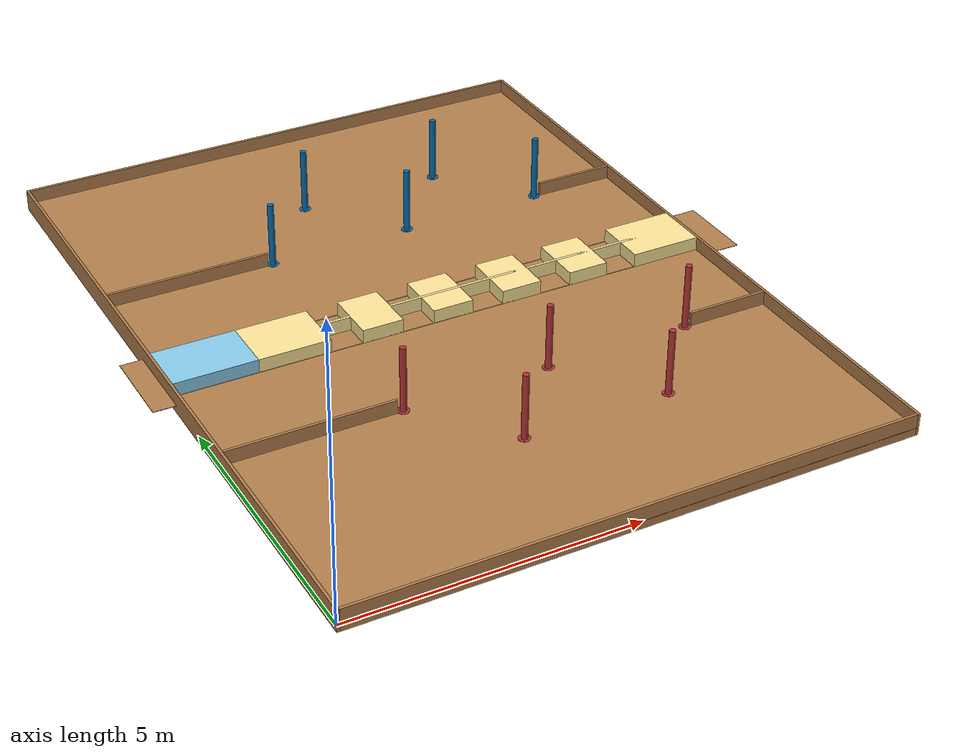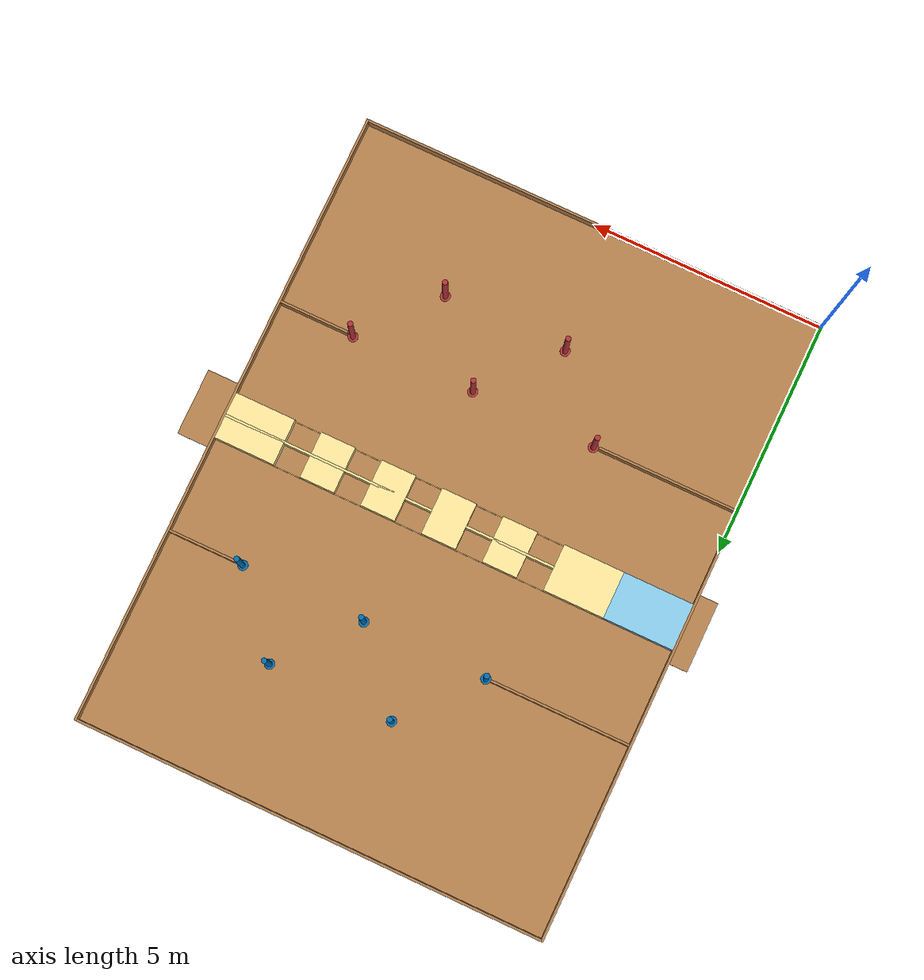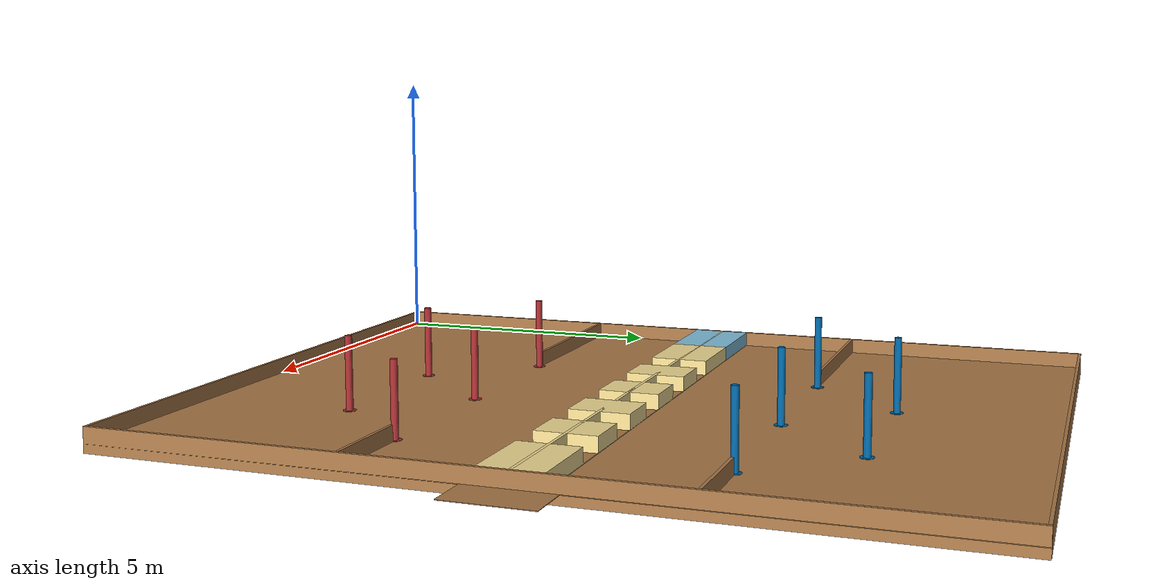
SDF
<?xml version='1.0'?>
<sdf version='1.6'>
	<model name='NHK2020'>
		<static>true</static>
		<pose>0 0 0 0 0 0</pose>
		<link name="base_link" />

		<link name="floor_main_link">
			<collision name="floor_main_collision">
				<pose>5.050 6.7 0.005 0 0 0</pose>
				<geometry>
					<box>
						<size>10.10 13.40 0.01</size>
					</box>
				</geometry>
			</collision>
			<visual name="floor_main_visual">
				<pose>5.050 6.7 0.005 0 0 0</pose>
				<geometry>
					<box>
						<size>10.10 13.40 0.01</size>
					</box>
				</geometry>
				<material>
					<script>
						<uri>file://media/materials/scripts/gazebo.material</uri>
						<name>Gazebo/Wood</name>
					</script>
					<ambient>1 1 1 1</ambient>
				</material>
				<meta>
					<layer>0</layer>
				</meta>
			</visual>
		</link>
		<link name="floor_goal_link">
			<collision name="floor_goal_collision">
				<pose>10.450 6.7 0.005 0 0 0</pose>
				<geometry>
					<box>
						<size>0.7 1.42 0.01</size>
					</box>
				</geometry>
			</collision>
			<visual name="floor_goal_visual">
				<pose>10.450 6.7 0.005 0 0 0</pose>
				<geometry>
					<box>
						<size>0.7 1.42 0.01</size>
					</box>
				</geometry>
				<material>
					<script>
						<uri>file://media/materials/scripts/gazebo.material</uri>
						<name>Gazebo/Wood</name>
					</script>
					<ambient>1 1 1 1</ambient>
				</material>
				<meta>
					<layer>0</layer>
				</meta>
			</visual>
		</link>
		<link name="floor_kickballrack_link">
			<collision name="floor_kickballrack_collision">
				<pose>-0.2 6.7 0.005 0 0 0</pose>
				<geometry>
					<box>
						<size>0.4 1.5 0.01</size>
					</box>
				</geometry>
			</collision>
			<visual name="floor_goal_visual">
				<pose>-0.2 6.7 0.005 0 0 0</pose>
				<geometry>
					<box>
						<size>0.4 1.5 0.01</size>
					</box>
				</geometry>
				<material>
					<script>
						<uri>file://media/materials/scripts/gazebo.material</uri>
						<name>Gazebo/Wood</name>
					</script>
					<ambient>1 1 1 1</ambient>
				</material>
				<meta>
					<layer>0</layer>
				</meta>
			</visual>
		</link>
		<link name="wall_blue_link">
			<collision name="wall_blue_collision">
				<pose>5.050 0.025 0.06 0 0 0</pose>
				<geometry>
					<box>
						<size>10 0.05 0.4</size>
					</box>
				</geometry>
			</collision>
			<visual name="wall_blue_visual">
				<pose>5.050 0.025 0.06 0 0 0</pose>
				<geometry>
					<box>
						<size>10 0.05 0.4</size>
					</box>
				</geometry>
				<material>
					<script>
						<uri>file://media/materials/scripts/gazebo.material</uri>
						<name>Gazebo/Wood</name>
					</script>
					<ambient>1 1 1 1</ambient>
				</material>
				<meta>
					<layer>0</layer>
				</meta>
			</visual>
		</link>
		<link name="wall_red_link">
			<collision name="wall_red_collision">
				<pose>5.050 13.375 0.06 0 0 0</pose>
				<geometry>
					<box>
						<size>10 0.05 0.4</size>
					</box>
				</geometry>
			</collision>
			<visual name="wall_red_visual">
				<pose>5.050 13.375 0.06 0 0 0</pose>
				<geometry>
					<box>
						<size>10 0.05 0.4</size>
					</box>
				</geometry>
				<material>
					<script>
						<uri>file://media/materials/scripts/gazebo.material</uri>
						<name>Gazebo/Wood</name>
					</script>
					<ambient>1 1 1 1</ambient>
				</material>
				<meta>
					<layer>0</layer>
				</meta>
			</visual>
		</link>
		<link name="wall_goal_link">
			<collision name="wall_goal_collision">
				<pose>10.075 6.7 0.06 0 0 0</pose>
				<geometry>
					<box>
						<size>0.05 13.400 0.4</size>
					</box>
				</geometry>
			</collision>
			<visual name="wall_goal_visual">
				<pose>10.075 6.7 0.06 0 0 0</pose>
				<geometry>
					<box>
						<size>0.05 13.400 0.4</size>
					</box>
				</geometry>
				<material>
					<script>
						<uri>file://media/materials/scripts/gazebo.material</uri>
						<name>Gazebo/Wood</name>
					</script>
					<ambient>1 1 1 1</ambient>
				</material>
				<meta>
					<layer>0</layer>
				</meta>
			</visual>
		</link>
		<link name="wall_rack_link">
			<collision name="wall_rack_collision">
				<pose>0.025 6.7 0.06 0 0 0</pose>
				<geometry>
					<box>
						<size>0.05 13.400 0.4</size>
					</box>
				</geometry>
			</collision>
			<visual name="wall_goal_visual">
				<pose>0.025 6.7 0.06 0 0 0</pose>
				<geometry>
					<box>
						<size>0.05 13.400 0.4</size>
					</box>
				</geometry>
				<material>
					<script>
						<uri>file://media/materials/scripts/gazebo.material</uri>
						<name>Gazebo/Wood</name>
					</script>
					<ambient>1 1 1 1</ambient>
				</material>
				<meta>
					<layer>0</layer>
				</meta>
			</visual>
		</link>
		<link name="wall_prsz_blue_link">
			<collision name="wall_prsz_blue_collision">
				<pose>1.5415 4.15 0.06 0 0 0</pose>
				<geometry>
					<box>
						<size>2.983 0.05 0.4</size>
					</box>
				</geometry>
			</collision>
			<visual name="wall_prsz_blue_visual">
				<pose>1.5415 4.15 0.06 0 0 0</pose>
				<geometry>
					<box>
						<size>2.983 0.05 0.4</size>
					</box>
				</geometry>
				<material>
					<script>
						<uri>file://media/materials/scripts/gazebo.material</uri>
						<name>Gazebo/Wood</name>
					</script>
					<ambient>1 1 1 1</ambient>
				</material>
				<meta>
					<layer>0</layer>
				</meta>
			</visual>
		</link>
		<link name="wall_prsz_red_link">
			<collision name="wall_prsz_red_collision">
				<pose>1.5415 9.250 0.06 0 0 0</pose>
				<geometry>
					<box>
						<size>2.983 0.05 0.4</size>
					</box>
				</geometry>
			</collision>
			<visual name="wall_prsz_red_visual">
				<pose>1.5415 9.250 0.06 0 0 0</pose>
				<geometry>
					<box>
						<size>2.983 0.05 0.4</size>
					</box>
				</geometry>
				<material>
					<script>
						<uri>file://media/materials/scripts/gazebo.material</uri>
						<name>Gazebo/Wood</name>
					</script>
					<ambient>1 1 1 1</ambient>
				</material>
				<meta>
					<layer>0</layer>
				</meta>
			</visual>
		</link>
		<link name="wall_trsz_blue_link">
			<collision name="wall_trsz_blue_collision">
				<pose>9.3085 4.15 0.06 0 0 0</pose>
				<geometry>
					<box>
						<size>1.483 0.05 0.4</size>
					</box>
				</geometry>
			</collision>
			<visual name="wall_trsz_blue_visual">
				<pose>9.3085 4.15 0.06 0 0 0</pose>
				<geometry>
					<box>
						<size>1.483 0.05 0.4</size>
					</box>
				</geometry>
				<material>
					<script>
						<uri>file://media/materials/scripts/gazebo.material</uri>
						<name>Gazebo/Wood</name>
					</script>
					<ambient>1 1 1 1</ambient>
				</material>
				<meta>
					<layer>0</layer>
				</meta>
			</visual>
		</link>
		<link name="wall_trsz_red_link">
			<collision name="wall_trsz_red_collision">
				<pose>9.3085 9.250 0.06 0 0 0</pose>
				<geometry>
					<box>
						<size>1.483 0.05 0.4</size>
					</box>
				</geometry>
			</collision>
			<visual name="wall_prsz_blue_visual">
				<pose>9.3085 9.250 0.06 0 0 0</pose>
				<geometry>
					<box>
						<size>1.483 0.05 0.4</size>
					</box>
				</geometry>
				<material>
					<script>
						<uri>file://media/materials/scripts/gazebo.material</uri>
						<name>Gazebo/Wood</name>
					</script>
					<ambient>1 1 1 1</ambient>
				</material>
				<meta>
					<layer>0</layer>
				</meta>
			</visual>
		</link>
		<link name="obj_tbrack_link">
			<collision name="obj_tbrack_collision">
				<pose>0.8 6.7 0.06 0 0 0</pose>
				<geometry>
					<box>
						<size>1.5 1.0 0.4</size>
					</box>
				</geometry>
			</collision>
			<visual name="obj_tbrack_visual">
				<pose>0.8 6.7 0.06 0 0 0</pose>
				<geometry>
					<box>
						<size>1.5 1.0 0.4</size>
					</box>
				</geometry>
				<material>
					<diffuse>0.5333 0.7922 0.9137 1</diffuse>
					<ambient>1 1 1 1</ambient>
				</material>
				<meta>
					<layer>0</layer>
				</meta>
			</visual>
		</link>
		<!-- count from rack -->
		<link name="obj_trspots0_link">
			<collision name="obj_trspots0_collision">
				<pose>2.2 6.7 0.06 0 0 0</pose>
				<geometry>
					<box>
						<size>1.3 1.0 0.4</size>
					</box>
				</geometry>
			</collision>
			<visual name="obj_trspots0_visual">
				<pose>2.2 6.7 0.06 0 0 0</pose>
				<geometry>
					<box>
						<size>1.3 1.0 0.4</size>
					</box>
				</geometry>
				<material>
					<diffuse>0.9922 0.8980 0.6 1</diffuse>
					<ambient>1 1 1 1</ambient>
				</material>
				<meta>
					<layer>0</layer>
				</meta>
			</visual>
		</link>
		<link name="obj_trspots1_link">
			<collision name="obj_trspots1_collision">
				<pose>3.805 6.7 0.06 0 0 0</pose>
				<geometry>
					<box>
						<size>0.75 1.0 0.4</size>
					</box>
				</geometry>
			</collision>
			<visual name="obj_trspots1_visual">
				<pose>3.805 6.7 0.06 0 0 0</pose>
				<geometry>
					<box>
						<size>0.75 1.0 0.4</size>
					</box>
				</geometry>
				<material>
					<diffuse>0.9922 0.8980 0.6 1</diffuse>
					<ambient>1 1 1 1</ambient>
				</material>
				<meta>
					<layer>0</layer>
				</meta>
			</visual>
		</link>
		<link name="obj_trspots2_link">
			<collision name="obj_trspots2_collision">
				<pose>5.135 6.7 0.06 0 0 0</pose>
				<geometry>
					<box>
						<size>0.75 1.0 0.4</size>
					</box>
				</geometry>
			</collision>
			<visual name="obj_trspots2_visual">
				<pose>5.135 6.7 0.06 0 0 0</pose>
				<geometry>
					<box>
						<size>0.75 1.0 0.4</size>
					</box>
				</geometry>
				<material>
					<diffuse>0.9922 0.8980 0.6 1</diffuse>
					<ambient>1 1 1 1</ambient>
				</material>
				<meta>
					<layer>0</layer>
				</meta>
			</visual>
		</link>
		<link name="obj_trspots3_link">
			<collision name="obj_trspots3_collision">
				<pose>6.465 6.7 0.06 0 0 0</pose>
				<geometry>
					<box>
						<size>0.75 1.0 0.4</size>
					</box>
				</geometry>
			</collision>
			<visual name="obj_trspots3_visual">
				<pose>6.465 6.7 0.06 0 0 0</pose>
				<geometry>
					<box>
						<size>0.75 1.0 0.4</size>
					</box>
				</geometry>
				<material>
					<diffuse>0.9922 0.8980 0.6 1</diffuse>
					<ambient>1 1 1 1</ambient>
				</material>
				<meta>
					<layer>0</layer>
				</meta>
			</visual>
		</link>
		<link name="obj_trspots4_link">
			<collision name="obj_trspots4_collision">
				<pose>7.795 6.7 0.06 0 0 0</pose>
				<geometry>
					<box>
						<size>0.75 1.0 0.4</size>
					</box>
				</geometry>
			</collision>
			<visual name="obj_trspots4_visual">
				<pose>7.795 6.7 0.06 0 0 0</pose>
				<geometry>
					<box>
						<size>0.75 1.0 0.4</size>
					</box>
				</geometry>
				<material>
					<diffuse>0.9922 0.8980 0.6 1</diffuse>
					<ambient>1 1 1 1</ambient>
				</material>
				<meta>
					<layer>0</layer>
				</meta>
			</visual>
		</link>
		<link name="obj_trspots5_link">
			<collision name="obj_trspots5_collision">
				<pose>9.4 6.7 0.06 0 0 0</pose>
				<geometry>
					<box>
						<size>1.3 1.0 0.4</size>
					</box>
				</geometry>
			</collision>
			<visual name="obj_trspots4_visual">
				<pose>9.4 6.7 0.06 0 0 0</pose>
				<geometry>
					<box>
						<size>1.3 1.0 0.4</size>
					</box>
				</geometry>
				<material>
					<diffuse>0.9922 0.8980 0.6 1</diffuse>
					<ambient>1 1 1 1</ambient>
				</material>
				<meta>
					<layer>0</layer>
				</meta>
			</visual>
		</link>
		<link name="obj_bar_link">
			<collision name="obj_bar_collision">
				<pose>5.050 6.7 0.06 0 0 0</pose>
				<geometry>
					<box>
						<size>10 0.05 0.4</size>
					</box>
				</geometry>
			</collision>
			<visual name="obj_bar_visual">
				<pose>5.050 6.7 0.06 0 0 0</pose>
				<geometry>
					<box>
						<size>10 0.05 0.4</size>
					</box>
				</geometry>
				<material>
					<diffuse>0.9922 0.8980 0.6 1</diffuse>
					<ambient>1 1 1 1</ambient>
				</material>
				<meta>
					<layer>0</layer>
				</meta>
			</visual>
		</link>
		<link name="obj_steeltube_blue_link">
			<collision name="obj_steeltube_blue_collision">
				<pose>5.050 6.205 0.015 0 0 0</pose>
				<geometry>
					<box>
						<size>10 0.01 0.01</size>
					</box>
				</geometry>
			</collision>
			<visual name="obj_steeltube_blue_visual">
				<pose>5.050 6.205 0.015 0 0 0</pose>
				<geometry>
					<box>
						<size>10 0.01 0.01</size>
					</box>
				</geometry>
				<material>
					<diffuse>0.9922 0.8980 0.6 1</diffuse>
					<ambient>1 1 1 1</ambient>
				</material>
				<meta>
					<layer>0</layer>
				</meta>
			</visual>
		</link>
		<link name="obj_steeltube_red_link">
			<collision name="obj_steeltube_red_collision">
				<pose>5.050 7.195 0.015 0 0 0</pose>
				<geometry>
					<box>
						<size>10 0.01 0.01</size>
					</box>
				</geometry>
			</collision>
			<visual name="obj_steeltube_red_visual">
				<pose>5.050 7.195 0.015 0 0 0</pose>
				<geometry>
					<box>
						<size>10 0.01 0.01</size>
					</box>
				</geometry>
				<material>
					<diffuse>0.9922 0.8980 0.6 1</diffuse>
					<ambient>1 1 1 1</ambient>
				</material>
				<meta>
					<layer>0</layer>
				</meta>
			</visual>
		</link>
		<!-- count from rack side -->
		<!-- if you want to rotate poll, you should change wing yaw -->
		<link name="obj_obstacle_blue0_link">
			<collision name="obj_obstacle_blue0_bottom_collision">
				<pose>3.140 4.15 0.013 0 0 0</pose>
				<geometry>
					<cylinder>
						<radius>0.107</radius>
						<length>0.006</length>
					</cylinder>
				</geometry>
			</collision>
			<visual name="obj_obstacle_blue0_bottom_visual">
				<pose>3.140 4.15 0.013 0 0 0</pose>
				<geometry>
					<cylinder>
						<radius>0.107</radius>
						<length>0.006</length>
					</cylinder>
				</geometry>
				<material>
					<diffuse>0.6902 0.1922 0.2078 1</diffuse>
					<ambient>1 1 1 1</ambient>
				</material>
				<meta>
					<layer>0</layer>
				</meta>
			</visual>
			<collision name="obj_obstacle_blue0_poll_collision">
				<pose>3.140 4.15 0.61 0 0 0</pose>
				<geometry>
					<cylinder>
						<radius>0.057</radius>
						<length>1.2</length>
					</cylinder>
				</geometry>
			</collision>
			<visual name="obj_obstacle_blue0_poll_visual">
				<pose>3.140 4.15 0.61 0 0 0</pose>
				<geometry>
					<cylinder>
						<radius>0.057</radius>
						<length>1.2</length>
					</cylinder>
				</geometry>
				<material>
					<diffuse>0.6902 0.1922 0.2078 1</diffuse>
					<ambient>1 1 1 1</ambient>
				</material>
				<meta>
					<layer>0</layer>
				</meta>
			</visual>
		</link>
		<link name="obj_obstacle_blue1_link">
			<collision name="obj_obstacle_blue1_bottom_collision">
				<pose>4.470 2.610 0.013 0 0 0</pose>
				<geometry>
					<cylinder>
						<radius>0.107</radius>
						<length>0.006</length>
					</cylinder>
				</geometry>
			</collision>
			<visual name="obj_obstacle_blue1_bottom_visual">
				<pose>4.470 2.610 0.013 0 0 0</pose>
				<geometry>
					<cylinder>
						<radius>0.107</radius>
						<length>0.006</length>
					</cylinder>
				</geometry>
				<material>
					<diffuse>0.6902 0.1922 0.2078 1</diffuse>
					<ambient>1 1 1 1</ambient>
				</material>
				<meta>
					<layer>0</layer>
				</meta>
			</visual>
			<collision name="obj_obstacle_blue1_poll_collision">
				<pose>4.470 2.610 0.61 0 0 0</pose>
				<geometry>
					<cylinder>
						<radius>0.057</radius>
						<length>1.2</length>
					</cylinder>
				</geometry>
			</collision>
			<visual name="obj_obstacle_blue1_poll_visual">
				<pose>4.470 2.610 0.61 0 0 0</pose>
				<geometry>
					<cylinder>
						<radius>0.057</radius>
						<length>1.2</length>
					</cylinder>
				</geometry>
				<material>
					<diffuse>0.6902 0.1922 0.2078 1</diffuse>
					<ambient>1 1 1 1</ambient>
				</material>
				<meta>
					<layer>0</layer>
				</meta>
			</visual>
		</link>
		<link name="obj_obstacle_blue2_link">
			<collision name="obj_obstacle_blue2_bottom_collision">
				<pose>5.80 4.15 0.013 0 0 0</pose>
				<geometry>
					<cylinder>
						<radius>0.107</radius>
						<length>0.006</length>
					</cylinder>
				</geometry>
			</collision>
			<visual name="obj_obstacle_blue2_bottom_visual">
				<pose>5.80 4.15 0.013 0 0 0</pose>
				<geometry>
					<cylinder>
						<radius>0.107</radius>
						<length>0.006</length>
					</cylinder>
				</geometry>
				<material>
					<diffuse>0.6902 0.1922 0.2078 1</diffuse>
					<ambient>1 1 1 1</ambient>
				</material>
				<meta>
					<layer>0</layer>
				</meta>
			</visual>
			<collision name="obj_obstacle_blue2_poll_collision">
				<pose>5.80 4.15 0.61 0 0 0</pose>
				<geometry>
					<cylinder>
						<radius>0.057</radius>
						<length>1.2</length>
					</cylinder>
				</geometry>
			</collision>
			<visual name="obj_obstacle_blue2_poll_visual">
				<pose>5.80 4.15 0.61 0 0 0</pose>
				<geometry>
					<cylinder>
						<radius>0.057</radius>
						<length>1.2</length>
					</cylinder>
				</geometry>
				<material>
					<diffuse>0.6902 0.1922 0.2078 1</diffuse>
					<ambient>1 1 1 1</ambient>
				</material>
				<meta>
					<layer>0</layer>
				</meta>
			</visual>
		</link>
		<link name="obj_obstacle_blue3_link">
			<collision name="obj_obstacle_blue3_bottom_collision">
				<pose>7.130 2.610 0.013 0 0 0</pose>
				<geometry>
					<cylinder>
						<radius>0.107</radius>
						<length>0.006</length>
					</cylinder>
				</geometry>
			</collision>
			<visual name="obj_obstacle_blue3_bottom_visual">
				<pose>7.130 2.610 0.013 0 0 0</pose>
				<geometry>
					<cylinder>
						<radius>0.107</radius>
						<length>0.006</length>
					</cylinder>
				</geometry>
				<material>
					<diffuse>0.6902 0.1922 0.2078 1</diffuse>
					<ambient>1 1 1 1</ambient>
				</material>
				<meta>
					<layer>0</layer>
				</meta>
			</visual>
			<collision name="obj_obstacle_blue3_poll_collision">
				<pose>7.130 2.610 0.61 0 0 0</pose>
				<geometry>
					<cylinder>
						<radius>0.057</radius>
						<length>1.2</length>
					</cylinder>
				</geometry>
			</collision>
			<visual name="obj_obstacle_blue3_poll_visual">
				<pose>7.130 2.610 0.61 0 0 0</pose>
				<geometry>
					<cylinder>
						<radius>0.057</radius>
						<length>1.2</length>
					</cylinder>
				</geometry>
				<material>
					<diffuse>0.6902 0.1922 0.2078 1</diffuse>
					<ambient>1 1 1 1</ambient>
				</material>
				<meta>
					<layer>0</layer>
				</meta>
			</visual>
		</link>
		<link name="obj_obstacle_blue4_link">
			<collision name="obj_obstacle_blue4_bottom_collision">
				<pose>8.460 4.15 0.013 0 0 0</pose>
				<geometry>
					<cylinder>
						<radius>0.107</radius>
						<length>0.006</length>
					</cylinder>
				</geometry>
			</collision>
			<visual name="obj_obstacle_blue4_bottom_visual">
				<pose>8.460 4.15 0.013 0 0 0</pose>
				<geometry>
					<cylinder>
						<radius>0.107</radius>
						<length>0.006</length>
					</cylinder>
				</geometry>
				<material>
					<diffuse>0.6902 0.1922 0.2078 1</diffuse>
					<ambient>1 1 1 1</ambient>
				</material>
				<meta>
					<layer>0</layer>
				</meta>
			</visual>
			<collision name="obj_obstacle_blue4_poll_collision">
				<pose>8.460 4.15 0.61 0 0 0</pose>
				<geometry>
					<cylinder>
						<radius>0.057</radius>
						<length>1.2</length>
					</cylinder>
				</geometry>
			</collision>
			<visual name="obj_obstacle_blue4_poll_visual">
				<pose>8.460 4.15 0.61 0 0 0</pose>
				<geometry>
					<cylinder>
						<radius>0.057</radius>
						<length>1.2</length>
					</cylinder>
				</geometry>
				<material>
					<diffuse>0.6902 0.1922 0.2078 1</diffuse>
					<ambient>1 1 1 1</ambient>
				</material>
				<meta>
					<layer>0</layer>
				</meta>
			</visual>
		</link>
		<link name="obj_obstacle_red0_link">
			<collision name="obj_obstacle_red0_bottom_collision">
				<pose>3.140 9.25 0.013 0 0 0</pose>
				<geometry>
					<cylinder>
						<radius>0.107</radius>
						<length>0.006</length>
					</cylinder>
				</geometry>
			</collision>
			<visual name="obj_obstacle_red0_bottom_visual">
				<pose>3.140 9.25 0.013 0 0 0</pose>
				<geometry>
					<cylinder>
						<radius>0.107</radius>
						<length>0.006</length>
					</cylinder>
				</geometry>
				<material>
					<diffuse>0 0.4196 0.67450 1</diffuse>
					<ambient>1 1 1 1</ambient>
				</material>
				<meta>
					<layer>0</layer>
				</meta>
			</visual>
			<collision name="obj_obstacle_red0_poll_collision">
				<pose>3.140 9.250 0.61 0 0 0</pose>
				<geometry>
					<cylinder>
						<radius>0.057</radius>
						<length>1.2</length>
					</cylinder>
				</geometry>
			</collision>
			<visual name="obj_obstacle_red0_poll_visual">
				<pose>3.140 9.250 0.61 0 0 0</pose>
				<geometry>
					<cylinder>
						<radius>0.057</radius>
						<length>1.2</length>
					</cylinder>
				</geometry>
				<material>
					<diffuse>0 0.4196 0.67450 1</diffuse>
					<ambient>1 1 1 1</ambient>
				</material>
				<meta>
					<layer>0</layer>
				</meta>
			</visual>
		</link>
		<link name="obj_obstacle_red1_link">
			<collision name="obj_obstacle_red1_bottom_collision">
				<pose>4.470 10.790 0.013 0 0 0</pose>
				<geometry>
					<cylinder>
						<radius>0.107</radius>
						<length>0.006</length>
					</cylinder>
				</geometry>
			</collision>
			<visual name="obj_obstacle_red1_bottom_visual">
				<pose>4.470 10.790 0.013 0 0 0</pose>
				<geometry>
					<cylinder>
						<radius>0.107</radius>
						<length>0.006</length>
					</cylinder>
				</geometry>
				<material>
					<diffuse>0 0.4196 0.67450 1</diffuse>
					<ambient>1 1 1 1</ambient>
				</material>
				<meta>
					<layer>0</layer>
				</meta>
			</visual>
			<collision name="obj_obstacle_red1_poll_collision">
				<pose>4.470 10.790 0.61 0 0 0</pose>
				<geometry>
					<cylinder>
						<radius>0.057</radius>
						<length>1.2</length>
					</cylinder>
				</geometry>
			</collision>
			<visual name="obj_obstacle_red1_poll_visual">
				<pose>4.470 10.790 0.61 0 0 0</pose>
				<geometry>
					<cylinder>
						<radius>0.057</radius>
						<length>1.2</length>
					</cylinder>
				</geometry>
				<material>
					<diffuse>0 0.4196 0.67450 1</diffuse>
					<ambient>1 1 1 1</ambient>
				</material>
				<meta>
					<layer>0</layer>
				</meta>
			</visual>
		</link>
		<link name="obj_obstacle_red2_link">
			<collision name="obj_obstacle_red2_bottom_collision">
				<pose>5.80 9.250 0.013 0 0 0</pose>
				<geometry>
					<cylinder>
						<radius>0.107</radius>
						<length>0.006</length>
					</cylinder>
				</geometry>
			</collision>
			<visual name="obj_obstacle_red2_bottom_visual">
				<pose>5.80 9.250 0.013 0 0 0</pose>
				<geometry>
					<cylinder>
						<radius>0.107</radius>
						<length>0.006</length>
					</cylinder>
				</geometry>
				<material>
					<diffuse>0 0.4196 0.67450 1</diffuse>
					<ambient>1 1 1 1</ambient>
				</material>
				<meta>
					<layer>0</layer>
				</meta>
			</visual>
			<collision name="obj_obstacle_red2_poll_collision">
				<pose>5.80 9.250 0.61 0 0 0</pose>
				<geometry>
					<cylinder>
						<radius>0.057</radius>
						<length>1.2</length>
					</cylinder>
				</geometry>
			</collision>
			<visual name="obj_obstacle_red2_poll_visual">
				<pose>5.80 9.250 0.61 0 0 0</pose>
				<geometry>
					<cylinder>
						<radius>0.057</radius>
						<length>1.2</length>
					</cylinder>
				</geometry>
				<material>
					<diffuse>0 0.4196 0.67450 1</diffuse>
					<ambient>1 1 1 1</ambient>
				</material>
				<meta>
					<layer>0</layer>
				</meta>
			</visual>
		</link>
		<link name="obj_obstacle_red3_link">
			<collision name="obj_obstacle_red3_bottom_collision">
				<pose>7.130 10.790 0.013 0 0 0</pose>
				<geometry>
					<cylinder>
						<radius>0.107</radius>
						<length>0.006</length>
					</cylinder>
				</geometry>
			</collision>
			<visual name="obj_obstacle_red3_bottom_visual">
				<pose>7.130 10.790 0.013 0 0 0</pose>
				<geometry>
					<cylinder>
						<radius>0.107</radius>
						<length>0.006</length>
					</cylinder>
				</geometry>
				<material>
					<diffuse>0 0.4196 0.67450 1</diffuse>
					<ambient>1 1 1 1</ambient>
				</material>
				<meta>
					<layer>0</layer>
				</meta>
			</visual>
			<collision name="obj_obstacle_red3_poll_collision">
				<pose>7.130 10.790 0.61 0 0 0</pose>
				<geometry>
					<cylinder>
						<radius>0.057</radius>
						<length>1.2</length>
					</cylinder>
				</geometry>
			</collision>
			<visual name="obj_obstacle_red3_poll_visual">
				<pose>7.130 10.790 0.61 0 0 0</pose>
				<geometry>
					<cylinder>
						<radius>0.057</radius>
						<length>1.2</length>
					</cylinder>
				</geometry>
				<material>
					<diffuse>0 0.4196 0.67450 1</diffuse>
					<ambient>1 1 1 1</ambient>
				</material>
				<meta>
					<layer>0</layer>
				</meta>
			</visual>
		</link>
		<link name="obj_obstacle_red4_link">
			<collision name="obj_obstacle_red4_bottom_collision">
				<pose>8.460 9.250 0.013 0 0 0</pose>
				<geometry>
					<cylinder>
						<radius>0.107</radius>
						<length>0.006</length>
					</cylinder>
				</geometry>
			</collision>
			<visual name="obj_obstacle_red4_bottom_visual">
				<pose>8.460 9.250 0.013 0 0 0</pose>
				<geometry>
					<cylinder>
						<radius>0.107</radius>
						<length>0.006</length>
					</cylinder>
				</geometry>
				<material>
					<diffuse>0 0.4196 0.67450 1</diffuse>
					<ambient>1 1 1 1</ambient>
				</material>
				<meta>
					<layer>0</layer>
				</meta>
			</visual>
			<collision name="obj_obstacle_red4_poll_collision">
				<pose>8.460 9.250 0.61 0 0 0</pose>
				<geometry>
					<cylinder>
						<radius>0.057</radius>
						<length>1.2</length>
					</cylinder>
				</geometry>
			</collision>
			<visual name="obj_obstacle_red4_poll_visual">
				<pose>8.460 9.250 0.61 0 0 0</pose>
				<geometry>
					<cylinder>
						<radius>0.057</radius>
						<length>1.2</length>
					</cylinder>
				</geometry>
				<material>
					<diffuse>0 0.4196 0.67450 1</diffuse>
					<ambient>1 1 1 1</ambient>
				</material>
				<meta>
					<layer>0</layer>
				</meta>
			</visual>
		</link>
	</model>
</sdf>
